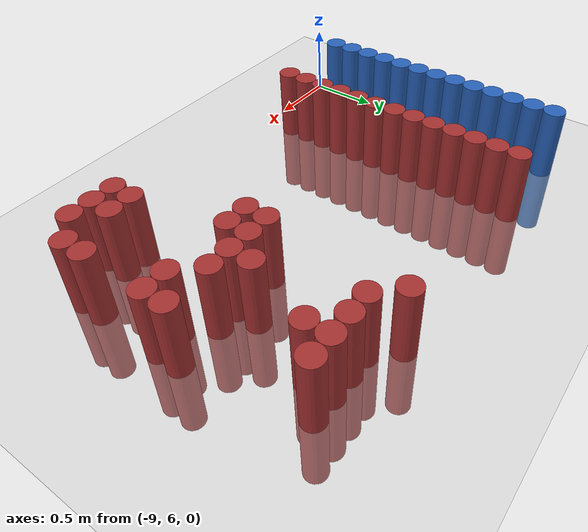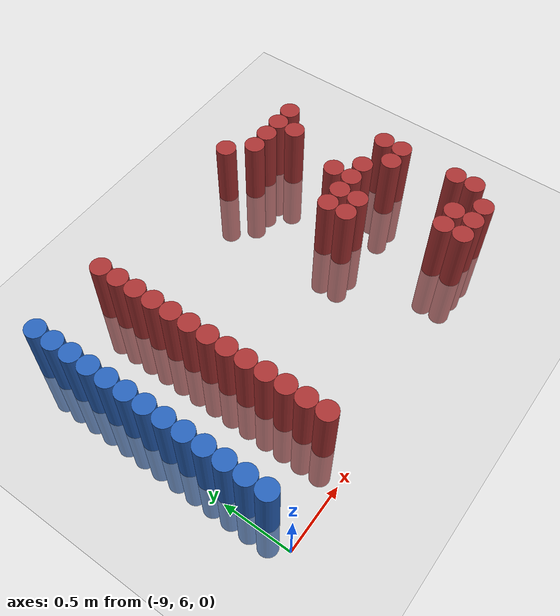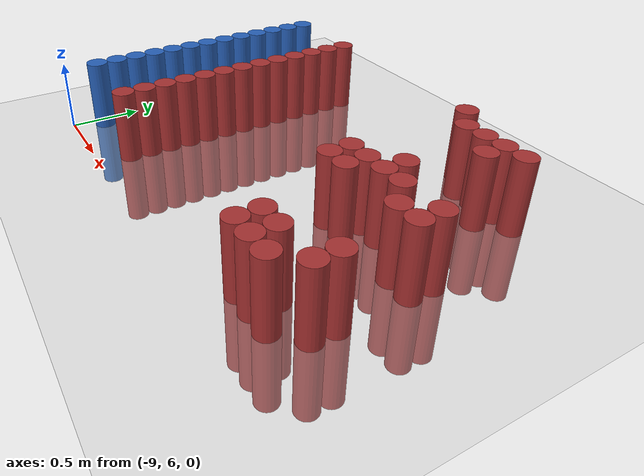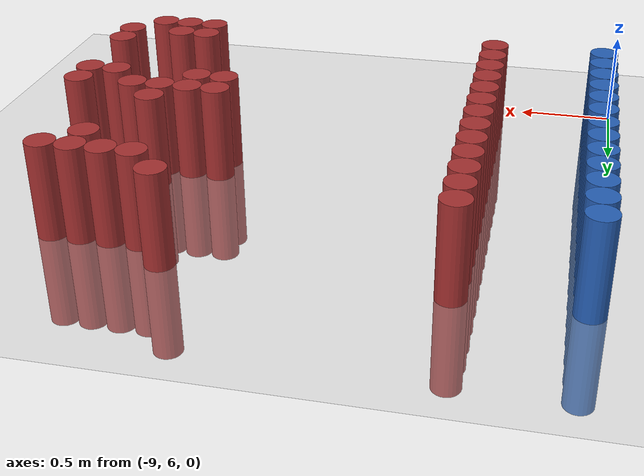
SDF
<sdf version="1.6">
 <world name="default">
  <model name="ground_plane">
   <static>1</static>
   <link name="link">
    <collision name="collision">
     <geometry><plane><normal>0 0 1</normal><size>100 100</size></plane></geometry>
     <surface><friction><ode><mu>100</mu><mu2>50</mu2></ode></friction></surface>
    </collision>
    <visual name="visual">
     <cast_shadows>0</cast_shadows>
     <geometry><plane><normal>0 0 1</normal><size>100 100</size></plane></geometry>
     <material>
      <script><uri>file://media/materials/scripts/gazebo.material</uri><name>Gazebo/Grey</name></script>
     </material>
    </visual>
   </link>
  </model>
  <model name="unit_cylinder_132">
   <static>1</static>
   <pose>-8.925000 6.225000 0.000000 0.000000 0.000000 0.000000</pose>
   <link name="link">
    <inertial>
     <mass>1</mass>
     <inertia><ixx>0.145833</ixx><ixy>0</ixy><ixz>0</ixz><iyy>0.145833</iyy><iyz>0</iyz><izz>0.125</izz></inertia>
    </inertial>
    <collision name="collision">
     <geometry><cylinder><radius>0.075000</radius><length>1</length></cylinder></geometry>
    </collision>
    <visual name="visual">
     <geometry><cylinder><radius>0.075000</radius><length>1</length></cylinder></geometry>
     <material>
      <ambient>0.152000 0.379000 0.720000 1</ambient>
      <diffuse>0.152000 0.379000 0.720000 1</diffuse>
     </material>
     <material>
      <script><name>Gazebo/Grey</name><uri>file://media/materials/scripts/gazebo.material</uri></script>
     </material>
    </visual>
   </link>
  </model>
  <model name="unit_cylinder_133">
   <static>1</static>
   <pose>-8.925000 6.375000 0.000000 0.000000 0.000000 0.000000</pose>
   <link name="link">
    <inertial>
     <mass>1</mass>
     <inertia><ixx>0.145833</ixx><ixy>0</ixy><ixz>0</ixz><iyy>0.145833</iyy><iyz>0</iyz><izz>0.125</izz></inertia>
    </inertial>
    <collision name="collision">
     <geometry><cylinder><radius>0.075000</radius><length>1</length></cylinder></geometry>
    </collision>
    <visual name="visual">
     <geometry><cylinder><radius>0.075000</radius><length>1</length></cylinder></geometry>
     <material>
      <ambient>0.152000 0.379000 0.720000 1</ambient>
      <diffuse>0.152000 0.379000 0.720000 1</diffuse>
     </material>
     <material>
      <script><name>Gazebo/Grey</name><uri>file://media/materials/scripts/gazebo.material</uri></script>
     </material>
    </visual>
   </link>
  </model>
  <model name="unit_cylinder_134">
   <static>1</static>
   <pose>-8.925000 6.525000 0.000000 0.000000 0.000000 0.000000</pose>
   <link name="link">
    <inertial>
     <mass>1</mass>
     <inertia><ixx>0.145833</ixx><ixy>0</ixy><ixz>0</ixz><iyy>0.145833</iyy><iyz>0</iyz><izz>0.125</izz></inertia>
    </inertial>
    <collision name="collision">
     <geometry><cylinder><radius>0.075000</radius><length>1</length></cylinder></geometry>
    </collision>
    <visual name="visual">
     <geometry><cylinder><radius>0.075000</radius><length>1</length></cylinder></geometry>
     <material>
      <ambient>0.152000 0.379000 0.720000 1</ambient>
      <diffuse>0.152000 0.379000 0.720000 1</diffuse>
     </material>
     <material>
      <script><name>Gazebo/Grey</name><uri>file://media/materials/scripts/gazebo.material</uri></script>
     </material>
    </visual>
   </link>
  </model>
  <model name="unit_cylinder_135">
   <static>1</static>
   <pose>-8.925000 6.675000 0.000000 0.000000 0.000000 0.000000</pose>
   <link name="link">
    <inertial>
     <mass>1</mass>
     <inertia><ixx>0.145833</ixx><ixy>0</ixy><ixz>0</ixz><iyy>0.145833</iyy><iyz>0</iyz><izz>0.125</izz></inertia>
    </inertial>
    <collision name="collision">
     <geometry><cylinder><radius>0.075000</radius><length>1</length></cylinder></geometry>
    </collision>
    <visual name="visual">
     <geometry><cylinder><radius>0.075000</radius><length>1</length></cylinder></geometry>
     <material>
      <ambient>0.152000 0.379000 0.720000 1</ambient>
      <diffuse>0.152000 0.379000 0.720000 1</diffuse>
     </material>
     <material>
      <script><name>Gazebo/Grey</name><uri>file://media/materials/scripts/gazebo.material</uri></script>
     </material>
    </visual>
   </link>
  </model>
  <model name="unit_cylinder_136">
   <static>1</static>
   <pose>-8.925000 6.825000 0.000000 0.000000 0.000000 0.000000</pose>
   <link name="link">
    <inertial>
     <mass>1</mass>
     <inertia><ixx>0.145833</ixx><ixy>0</ixy><ixz>0</ixz><iyy>0.145833</iyy><iyz>0</iyz><izz>0.125</izz></inertia>
    </inertial>
    <collision name="collision">
     <geometry><cylinder><radius>0.075000</radius><length>1</length></cylinder></geometry>
    </collision>
    <visual name="visual">
     <geometry><cylinder><radius>0.075000</radius><length>1</length></cylinder></geometry>
     <material>
      <ambient>0.152000 0.379000 0.720000 1</ambient>
      <diffuse>0.152000 0.379000 0.720000 1</diffuse>
     </material>
     <material>
      <script><name>Gazebo/Grey</name><uri>file://media/materials/scripts/gazebo.material</uri></script>
     </material>
    </visual>
   </link>
  </model>
  <model name="unit_cylinder_137">
   <static>1</static>
   <pose>-8.925000 6.975000 0.000000 0.000000 0.000000 0.000000</pose>
   <link name="link">
    <inertial>
     <mass>1</mass>
     <inertia><ixx>0.145833</ixx><ixy>0</ixy><ixz>0</ixz><iyy>0.145833</iyy><iyz>0</iyz><izz>0.125</izz></inertia>
    </inertial>
    <collision name="collision">
     <geometry><cylinder><radius>0.075000</radius><length>1</length></cylinder></geometry>
    </collision>
    <visual name="visual">
     <geometry><cylinder><radius>0.075000</radius><length>1</length></cylinder></geometry>
     <material>
      <ambient>0.152000 0.379000 0.720000 1</ambient>
      <diffuse>0.152000 0.379000 0.720000 1</diffuse>
     </material>
     <material>
      <script><name>Gazebo/Grey</name><uri>file://media/materials/scripts/gazebo.material</uri></script>
     </material>
    </visual>
   </link>
  </model>
  <model name="unit_cylinder_138">
   <static>1</static>
   <pose>-8.925000 7.125000 0.000000 0.000000 0.000000 0.000000</pose>
   <link name="link">
    <inertial>
     <mass>1</mass>
     <inertia><ixx>0.145833</ixx><ixy>0</ixy><ixz>0</ixz><iyy>0.145833</iyy><iyz>0</iyz><izz>0.125</izz></inertia>
    </inertial>
    <collision name="collision">
     <geometry><cylinder><radius>0.075000</radius><length>1</length></cylinder></geometry>
    </collision>
    <visual name="visual">
     <geometry><cylinder><radius>0.075000</radius><length>1</length></cylinder></geometry>
     <material>
      <ambient>0.152000 0.379000 0.720000 1</ambient>
      <diffuse>0.152000 0.379000 0.720000 1</diffuse>
     </material>
     <material>
      <script><name>Gazebo/Grey</name><uri>file://media/materials/scripts/gazebo.material</uri></script>
     </material>
    </visual>
   </link>
  </model>
  <model name="unit_cylinder_139">
   <static>1</static>
   <pose>-8.925000 7.275000 0.000000 0.000000 0.000000 0.000000</pose>
   <link name="link">
    <inertial>
     <mass>1</mass>
     <inertia><ixx>0.145833</ixx><ixy>0</ixy><ixz>0</ixz><iyy>0.145833</iyy><iyz>0</iyz><izz>0.125</izz></inertia>
    </inertial>
    <collision name="collision">
     <geometry><cylinder><radius>0.075000</radius><length>1</length></cylinder></geometry>
    </collision>
    <visual name="visual">
     <geometry><cylinder><radius>0.075000</radius><length>1</length></cylinder></geometry>
     <material>
      <ambient>0.152000 0.379000 0.720000 1</ambient>
      <diffuse>0.152000 0.379000 0.720000 1</diffuse>
     </material>
     <material>
      <script><name>Gazebo/Grey</name><uri>file://media/materials/scripts/gazebo.material</uri></script>
     </material>
    </visual>
   </link>
  </model>
  <model name="unit_cylinder_140">
   <static>1</static>
   <pose>-8.925000 7.425000 0.000000 0.000000 0.000000 0.000000</pose>
   <link name="link">
    <inertial>
     <mass>1</mass>
     <inertia><ixx>0.145833</ixx><ixy>0</ixy><ixz>0</ixz><iyy>0.145833</iyy><iyz>0</iyz><izz>0.125</izz></inertia>
    </inertial>
    <collision name="collision">
     <geometry><cylinder><radius>0.075000</radius><length>1</length></cylinder></geometry>
    </collision>
    <visual name="visual">
     <geometry><cylinder><radius>0.075000</radius><length>1</length></cylinder></geometry>
     <material>
      <ambient>0.152000 0.379000 0.720000 1</ambient>
      <diffuse>0.152000 0.379000 0.720000 1</diffuse>
     </material>
     <material>
      <script><name>Gazebo/Grey</name><uri>file://media/materials/scripts/gazebo.material</uri></script>
     </material>
    </visual>
   </link>
  </model>
  <model name="unit_cylinder_141">
   <static>1</static>
   <pose>-8.925000 7.575000 0.000000 0.000000 0.000000 0.000000</pose>
   <link name="link">
    <inertial>
     <mass>1</mass>
     <inertia><ixx>0.145833</ixx><ixy>0</ixy><ixz>0</ixz><iyy>0.145833</iyy><iyz>0</iyz><izz>0.125</izz></inertia>
    </inertial>
    <collision name="collision">
     <geometry><cylinder><radius>0.075000</radius><length>1</length></cylinder></geometry>
    </collision>
    <visual name="visual">
     <geometry><cylinder><radius>0.075000</radius><length>1</length></cylinder></geometry>
     <material>
      <ambient>0.152000 0.379000 0.720000 1</ambient>
      <diffuse>0.152000 0.379000 0.720000 1</diffuse>
     </material>
     <material>
      <script><name>Gazebo/Grey</name><uri>file://media/materials/scripts/gazebo.material</uri></script>
     </material>
    </visual>
   </link>
  </model>
  <model name="unit_cylinder_142">
   <static>1</static>
   <pose>-8.925000 7.725000 0.000000 0.000000 0.000000 0.000000</pose>
   <link name="link">
    <inertial>
     <mass>1</mass>
     <inertia><ixx>0.145833</ixx><ixy>0</ixy><ixz>0</ixz><iyy>0.145833</iyy><iyz>0</iyz><izz>0.125</izz></inertia>
    </inertial>
    <collision name="collision">
     <geometry><cylinder><radius>0.075000</radius><length>1</length></cylinder></geometry>
    </collision>
    <visual name="visual">
     <geometry><cylinder><radius>0.075000</radius><length>1</length></cylinder></geometry>
     <material>
      <ambient>0.152000 0.379000 0.720000 1</ambient>
      <diffuse>0.152000 0.379000 0.720000 1</diffuse>
     </material>
     <material>
      <script><name>Gazebo/Grey</name><uri>file://media/materials/scripts/gazebo.material</uri></script>
     </material>
    </visual>
   </link>
  </model>
  <model name="unit_cylinder_143">
   <static>1</static>
   <pose>-8.925000 7.875000 0.000000 0.000000 0.000000 0.000000</pose>
   <link name="link">
    <inertial>
     <mass>1</mass>
     <inertia><ixx>0.145833</ixx><ixy>0</ixy><ixz>0</ixz><iyy>0.145833</iyy><iyz>0</iyz><izz>0.125</izz></inertia>
    </inertial>
    <collision name="collision">
     <geometry><cylinder><radius>0.075000</radius><length>1</length></cylinder></geometry>
    </collision>
    <visual name="visual">
     <geometry><cylinder><radius>0.075000</radius><length>1</length></cylinder></geometry>
     <material>
      <ambient>0.152000 0.379000 0.720000 1</ambient>
      <diffuse>0.152000 0.379000 0.720000 1</diffuse>
     </material>
     <material>
      <script><name>Gazebo/Grey</name><uri>file://media/materials/scripts/gazebo.material</uri></script>
     </material>
    </visual>
   </link>
  </model>
  <model name="unit_cylinder_144">
   <static>1</static>
   <pose>-8.925000 8.025000 0.000000 0.000000 0.000000 0.000000</pose>
   <link name="link">
    <inertial>
     <mass>1</mass>
     <inertia><ixx>0.145833</ixx><ixy>0</ixy><ixz>0</ixz><iyy>0.145833</iyy><iyz>0</iyz><izz>0.125</izz></inertia>
    </inertial>
    <collision name="collision">
     <geometry><cylinder><radius>0.075000</radius><length>1</length></cylinder></geometry>
    </collision>
    <visual name="visual">
     <geometry><cylinder><radius>0.075000</radius><length>1</length></cylinder></geometry>
     <material>
      <ambient>0.152000 0.379000 0.720000 1</ambient>
      <diffuse>0.152000 0.379000 0.720000 1</diffuse>
     </material>
     <material>
      <script><name>Gazebo/Grey</name><uri>file://media/materials/scripts/gazebo.material</uri></script>
     </material>
    </visual>
   </link>
  </model>
  <model name="unit_cylinder_166">
   <static>1</static>
   <pose>-8.325000 6.225000 0.000000 0.000000 0.000000 0.000000</pose>
   <link name="link">
    <inertial>
     <mass>1</mass>
     <inertia><ixx>0.145833</ixx><ixy>0</ixy><ixz>0</ixz><iyy>0.145833</iyy><iyz>0</iyz><izz>0.125</izz></inertia>
    </inertial>
    <collision name="collision">
     <geometry><cylinder><radius>0.075000</radius><length>1</length></cylinder></geometry>
    </collision>
    <visual name="visual">
     <geometry><cylinder><radius>0.075000</radius><length>1</length></cylinder></geometry>
     <material>
      <ambient>0.648000 0.192000 0.192000 1</ambient>
      <diffuse>0.648000 0.192000 0.192000 1</diffuse>
     </material>
     <material>
      <script><name>Gazebo/Grey</name><uri>file://media/materials/scripts/gazebo.material</uri></script>
     </material>
    </visual>
   </link>
  </model>
  <model name="unit_cylinder_167">
   <static>1</static>
   <pose>-8.325000 6.375000 0.000000 0.000000 0.000000 0.000000</pose>
   <link name="link">
    <inertial>
     <mass>1</mass>
     <inertia><ixx>0.145833</ixx><ixy>0</ixy><ixz>0</ixz><iyy>0.145833</iyy><iyz>0</iyz><izz>0.125</izz></inertia>
    </inertial>
    <collision name="collision">
     <geometry><cylinder><radius>0.075000</radius><length>1</length></cylinder></geometry>
    </collision>
    <visual name="visual">
     <geometry><cylinder><radius>0.075000</radius><length>1</length></cylinder></geometry>
     <material>
      <ambient>0.648000 0.192000 0.192000 1</ambient>
      <diffuse>0.648000 0.192000 0.192000 1</diffuse>
     </material>
     <material>
      <script><name>Gazebo/Grey</name><uri>file://media/materials/scripts/gazebo.material</uri></script>
     </material>
    </visual>
   </link>
  </model>
  <model name="unit_cylinder_168">
   <static>1</static>
   <pose>-8.325000 6.525000 0.000000 0.000000 0.000000 0.000000</pose>
   <link name="link">
    <inertial>
     <mass>1</mass>
     <inertia><ixx>0.145833</ixx><ixy>0</ixy><ixz>0</ixz><iyy>0.145833</iyy><iyz>0</iyz><izz>0.125</izz></inertia>
    </inertial>
    <collision name="collision">
     <geometry><cylinder><radius>0.075000</radius><length>1</length></cylinder></geometry>
    </collision>
    <visual name="visual">
     <geometry><cylinder><radius>0.075000</radius><length>1</length></cylinder></geometry>
     <material>
      <ambient>0.648000 0.192000 0.192000 1</ambient>
      <diffuse>0.648000 0.192000 0.192000 1</diffuse>
     </material>
     <material>
      <script><name>Gazebo/Grey</name><uri>file://media/materials/scripts/gazebo.material</uri></script>
     </material>
    </visual>
   </link>
  </model>
  <model name="unit_cylinder_169">
   <static>1</static>
   <pose>-8.325000 6.675000 0.000000 0.000000 0.000000 0.000000</pose>
   <link name="link">
    <inertial>
     <mass>1</mass>
     <inertia><ixx>0.145833</ixx><ixy>0</ixy><ixz>0</ixz><iyy>0.145833</iyy><iyz>0</iyz><izz>0.125</izz></inertia>
    </inertial>
    <collision name="collision">
     <geometry><cylinder><radius>0.075000</radius><length>1</length></cylinder></geometry>
    </collision>
    <visual name="visual">
     <geometry><cylinder><radius>0.075000</radius><length>1</length></cylinder></geometry>
     <material>
      <ambient>0.648000 0.192000 0.192000 1</ambient>
      <diffuse>0.648000 0.192000 0.192000 1</diffuse>
     </material>
     <material>
      <script><name>Gazebo/Grey</name><uri>file://media/materials/scripts/gazebo.material</uri></script>
     </material>
    </visual>
   </link>
  </model>
  <model name="unit_cylinder_170">
   <static>1</static>
   <pose>-8.325000 6.825000 0.000000 0.000000 0.000000 0.000000</pose>
   <link name="link">
    <inertial>
     <mass>1</mass>
     <inertia><ixx>0.145833</ixx><ixy>0</ixy><ixz>0</ixz><iyy>0.145833</iyy><iyz>0</iyz><izz>0.125</izz></inertia>
    </inertial>
    <collision name="collision">
     <geometry><cylinder><radius>0.075000</radius><length>1</length></cylinder></geometry>
    </collision>
    <visual name="visual">
     <geometry><cylinder><radius>0.075000</radius><length>1</length></cylinder></geometry>
     <material>
      <ambient>0.648000 0.192000 0.192000 1</ambient>
      <diffuse>0.648000 0.192000 0.192000 1</diffuse>
     </material>
     <material>
      <script><name>Gazebo/Grey</name><uri>file://media/materials/scripts/gazebo.material</uri></script>
     </material>
    </visual>
   </link>
  </model>
  <model name="unit_cylinder_171">
   <static>1</static>
   <pose>-8.325000 6.975000 0.000000 0.000000 0.000000 0.000000</pose>
   <link name="link">
    <inertial>
     <mass>1</mass>
     <inertia><ixx>0.145833</ixx><ixy>0</ixy><ixz>0</ixz><iyy>0.145833</iyy><iyz>0</iyz><izz>0.125</izz></inertia>
    </inertial>
    <collision name="collision">
     <geometry><cylinder><radius>0.075000</radius><length>1</length></cylinder></geometry>
    </collision>
    <visual name="visual">
     <geometry><cylinder><radius>0.075000</radius><length>1</length></cylinder></geometry>
     <material>
      <ambient>0.648000 0.192000 0.192000 1</ambient>
      <diffuse>0.648000 0.192000 0.192000 1</diffuse>
     </material>
     <material>
      <script><name>Gazebo/Grey</name><uri>file://media/materials/scripts/gazebo.material</uri></script>
     </material>
    </visual>
   </link>
  </model>
  <model name="unit_cylinder_172">
   <static>1</static>
   <pose>-8.325000 7.125000 0.000000 0.000000 0.000000 0.000000</pose>
   <link name="link">
    <inertial>
     <mass>1</mass>
     <inertia><ixx>0.145833</ixx><ixy>0</ixy><ixz>0</ixz><iyy>0.145833</iyy><iyz>0</iyz><izz>0.125</izz></inertia>
    </inertial>
    <collision name="collision">
     <geometry><cylinder><radius>0.075000</radius><length>1</length></cylinder></geometry>
    </collision>
    <visual name="visual">
     <geometry><cylinder><radius>0.075000</radius><length>1</length></cylinder></geometry>
     <material>
      <ambient>0.648000 0.192000 0.192000 1</ambient>
      <diffuse>0.648000 0.192000 0.192000 1</diffuse>
     </material>
     <material>
      <script><name>Gazebo/Grey</name><uri>file://media/materials/scripts/gazebo.material</uri></script>
     </material>
    </visual>
   </link>
  </model>
  <model name="unit_cylinder_173">
   <static>1</static>
   <pose>-8.325000 7.275000 0.000000 0.000000 0.000000 0.000000</pose>
   <link name="link">
    <inertial>
     <mass>1</mass>
     <inertia><ixx>0.145833</ixx><ixy>0</ixy><ixz>0</ixz><iyy>0.145833</iyy><iyz>0</iyz><izz>0.125</izz></inertia>
    </inertial>
    <collision name="collision">
     <geometry><cylinder><radius>0.075000</radius><length>1</length></cylinder></geometry>
    </collision>
    <visual name="visual">
     <geometry><cylinder><radius>0.075000</radius><length>1</length></cylinder></geometry>
     <material>
      <ambient>0.648000 0.192000 0.192000 1</ambient>
      <diffuse>0.648000 0.192000 0.192000 1</diffuse>
     </material>
     <material>
      <script><name>Gazebo/Grey</name><uri>file://media/materials/scripts/gazebo.material</uri></script>
     </material>
    </visual>
   </link>
  </model>
  <model name="unit_cylinder_174">
   <static>1</static>
   <pose>-8.325000 7.425000 0.000000 0.000000 0.000000 0.000000</pose>
   <link name="link">
    <inertial>
     <mass>1</mass>
     <inertia><ixx>0.145833</ixx><ixy>0</ixy><ixz>0</ixz><iyy>0.145833</iyy><iyz>0</iyz><izz>0.125</izz></inertia>
    </inertial>
    <collision name="collision">
     <geometry><cylinder><radius>0.075000</radius><length>1</length></cylinder></geometry>
    </collision>
    <visual name="visual">
     <geometry><cylinder><radius>0.075000</radius><length>1</length></cylinder></geometry>
     <material>
      <ambient>0.648000 0.192000 0.192000 1</ambient>
      <diffuse>0.648000 0.192000 0.192000 1</diffuse>
     </material>
     <material>
      <script><name>Gazebo/Grey</name><uri>file://media/materials/scripts/gazebo.material</uri></script>
     </material>
    </visual>
   </link>
  </model>
  <model name="unit_cylinder_175">
   <static>1</static>
   <pose>-8.325000 7.575000 0.000000 0.000000 0.000000 0.000000</pose>
   <link name="link">
    <inertial>
     <mass>1</mass>
     <inertia><ixx>0.145833</ixx><ixy>0</ixy><ixz>0</ixz><iyy>0.145833</iyy><iyz>0</iyz><izz>0.125</izz></inertia>
    </inertial>
    <collision name="collision">
     <geometry><cylinder><radius>0.075000</radius><length>1</length></cylinder></geometry>
    </collision>
    <visual name="visual">
     <geometry><cylinder><radius>0.075000</radius><length>1</length></cylinder></geometry>
     <material>
      <ambient>0.648000 0.192000 0.192000 1</ambient>
      <diffuse>0.648000 0.192000 0.192000 1</diffuse>
     </material>
     <material>
      <script><name>Gazebo/Grey</name><uri>file://media/materials/scripts/gazebo.material</uri></script>
     </material>
    </visual>
   </link>
  </model>
  <model name="unit_cylinder_176">
   <static>1</static>
   <pose>-8.325000 7.725000 0.000000 0.000000 0.000000 0.000000</pose>
   <link name="link">
    <inertial>
     <mass>1</mass>
     <inertia><ixx>0.145833</ixx><ixy>0</ixy><ixz>0</ixz><iyy>0.145833</iyy><iyz>0</iyz><izz>0.125</izz></inertia>
    </inertial>
    <collision name="collision">
     <geometry><cylinder><radius>0.075000</radius><length>1</length></cylinder></geometry>
    </collision>
    <visual name="visual">
     <geometry><cylinder><radius>0.075000</radius><length>1</length></cylinder></geometry>
     <material>
      <ambient>0.648000 0.192000 0.192000 1</ambient>
      <diffuse>0.648000 0.192000 0.192000 1</diffuse>
     </material>
     <material>
      <script><name>Gazebo/Grey</name><uri>file://media/materials/scripts/gazebo.material</uri></script>
     </material>
    </visual>
   </link>
  </model>
  <model name="unit_cylinder_177">
   <static>1</static>
   <pose>-8.325000 7.875000 0.000000 0.000000 0.000000 0.000000</pose>
   <link name="link">
    <inertial>
     <mass>1</mass>
     <inertia><ixx>0.145833</ixx><ixy>0</ixy><ixz>0</ixz><iyy>0.145833</iyy><iyz>0</iyz><izz>0.125</izz></inertia>
    </inertial>
    <collision name="collision">
     <geometry><cylinder><radius>0.075000</radius><length>1</length></cylinder></geometry>
    </collision>
    <visual name="visual">
     <geometry><cylinder><radius>0.075000</radius><length>1</length></cylinder></geometry>
     <material>
      <ambient>0.648000 0.192000 0.192000 1</ambient>
      <diffuse>0.648000 0.192000 0.192000 1</diffuse>
     </material>
     <material>
      <script><name>Gazebo/Grey</name><uri>file://media/materials/scripts/gazebo.material</uri></script>
     </material>
    </visual>
   </link>
  </model>
  <model name="unit_cylinder_178">
   <static>1</static>
   <pose>-8.325000 8.025000 0.000000 0.000000 0.000000 0.000000</pose>
   <link name="link">
    <inertial>
     <mass>1</mass>
     <inertia><ixx>0.145833</ixx><ixy>0</ixy><ixz>0</ixz><iyy>0.145833</iyy><iyz>0</iyz><izz>0.125</izz></inertia>
    </inertial>
    <collision name="collision">
     <geometry><cylinder><radius>0.075000</radius><length>1</length></cylinder></geometry>
    </collision>
    <visual name="visual">
     <geometry><cylinder><radius>0.075000</radius><length>1</length></cylinder></geometry>
     <material>
      <ambient>0.648000 0.192000 0.192000 1</ambient>
      <diffuse>0.648000 0.192000 0.192000 1</diffuse>
     </material>
     <material>
      <script><name>Gazebo/Grey</name><uri>file://media/materials/scripts/gazebo.material</uri></script>
     </material>
    </visual>
   </link>
  </model>
  <model name="unit_cylinder_195">
   <static>1</static>
   <pose>-6.975000 6.975000 0.000000 0.000000 0.000000 0.000000</pose>
   <link name="link">
    <inertial>
     <mass>1</mass>
     <inertia><ixx>0.145833</ixx><ixy>0</ixy><ixz>0</ixz><iyy>0.145833</iyy><iyz>0</iyz><izz>0.125</izz></inertia>
    </inertial>
    <collision name="collision">
     <geometry><cylinder><radius>0.075000</radius><length>1</length></cylinder></geometry>
    </collision>
    <visual name="visual">
     <geometry><cylinder><radius>0.075000</radius><length>1</length></cylinder></geometry>
     <material>
      <ambient>0.648000 0.192000 0.192000 1</ambient>
      <diffuse>0.648000 0.192000 0.192000 1</diffuse>
     </material>
     <material>
      <script><name>Gazebo/Grey</name><uri>file://media/materials/scripts/gazebo.material</uri></script>
     </material>
    </visual>
   </link>
  </model>
  <model name="unit_cylinder_196">
   <static>1</static>
   <pose>-6.975000 7.125000 0.000000 0.000000 0.000000 0.000000</pose>
   <link name="link">
    <inertial>
     <mass>1</mass>
     <inertia><ixx>0.145833</ixx><ixy>0</ixy><ixz>0</ixz><iyy>0.145833</iyy><iyz>0</iyz><izz>0.125</izz></inertia>
    </inertial>
    <collision name="collision">
     <geometry><cylinder><radius>0.075000</radius><length>1</length></cylinder></geometry>
    </collision>
    <visual name="visual">
     <geometry><cylinder><radius>0.075000</radius><length>1</length></cylinder></geometry>
     <material>
      <ambient>0.648000 0.192000 0.192000 1</ambient>
      <diffuse>0.648000 0.192000 0.192000 1</diffuse>
     </material>
     <material>
      <script><name>Gazebo/Grey</name><uri>file://media/materials/scripts/gazebo.material</uri></script>
     </material>
    </visual>
   </link>
  </model>
  <model name="unit_cylinder_197">
   <static>1</static>
   <pose>-6.975000 8.025000 0.000000 0.000000 0.000000 0.000000</pose>
   <link name="link">
    <inertial>
     <mass>1</mass>
     <inertia><ixx>0.145833</ixx><ixy>0</ixy><ixz>0</ixz><iyy>0.145833</iyy><iyz>0</iyz><izz>0.125</izz></inertia>
    </inertial>
    <collision name="collision">
     <geometry><cylinder><radius>0.075000</radius><length>1</length></cylinder></geometry>
    </collision>
    <visual name="visual">
     <geometry><cylinder><radius>0.075000</radius><length>1</length></cylinder></geometry>
     <material>
      <ambient>0.648000 0.192000 0.192000 1</ambient>
      <diffuse>0.648000 0.192000 0.192000 1</diffuse>
     </material>
     <material>
      <script><name>Gazebo/Grey</name><uri>file://media/materials/scripts/gazebo.material</uri></script>
     </material>
    </visual>
   </link>
  </model>
  <model name="unit_cylinder_202">
   <static>1</static>
   <pose>-6.825000 6.975000 0.000000 0.000000 0.000000 0.000000</pose>
   <link name="link">
    <inertial>
     <mass>1</mass>
     <inertia><ixx>0.145833</ixx><ixy>0</ixy><ixz>0</ixz><iyy>0.145833</iyy><iyz>0</iyz><izz>0.125</izz></inertia>
    </inertial>
    <collision name="collision">
     <geometry><cylinder><radius>0.075000</radius><length>1</length></cylinder></geometry>
    </collision>
    <visual name="visual">
     <geometry><cylinder><radius>0.075000</radius><length>1</length></cylinder></geometry>
     <material>
      <ambient>0.648000 0.192000 0.192000 1</ambient>
      <diffuse>0.648000 0.192000 0.192000 1</diffuse>
     </material>
     <material>
      <script><name>Gazebo/Grey</name><uri>file://media/materials/scripts/gazebo.material</uri></script>
     </material>
    </visual>
   </link>
  </model>
  <model name="unit_cylinder_203">
   <static>1</static>
   <pose>-6.825000 7.125000 0.000000 0.000000 0.000000 0.000000</pose>
   <link name="link">
    <inertial>
     <mass>1</mass>
     <inertia><ixx>0.145833</ixx><ixy>0</ixy><ixz>0</ixz><iyy>0.145833</iyy><iyz>0</iyz><izz>0.125</izz></inertia>
    </inertial>
    <collision name="collision">
     <geometry><cylinder><radius>0.075000</radius><length>1</length></cylinder></geometry>
    </collision>
    <visual name="visual">
     <geometry><cylinder><radius>0.075000</radius><length>1</length></cylinder></geometry>
     <material>
      <ambient>0.648000 0.192000 0.192000 1</ambient>
      <diffuse>0.648000 0.192000 0.192000 1</diffuse>
     </material>
     <material>
      <script><name>Gazebo/Grey</name><uri>file://media/materials/scripts/gazebo.material</uri></script>
     </material>
    </visual>
   </link>
  </model>
  <model name="unit_cylinder_204">
   <static>1</static>
   <pose>-6.825000 7.875000 0.000000 0.000000 0.000000 0.000000</pose>
   <link name="link">
    <inertial>
     <mass>1</mass>
     <inertia><ixx>0.145833</ixx><ixy>0</ixy><ixz>0</ixz><iyy>0.145833</iyy><iyz>0</iyz><izz>0.125</izz></inertia>
    </inertial>
    <collision name="collision">
     <geometry><cylinder><radius>0.075000</radius><length>1</length></cylinder></geometry>
    </collision>
    <visual name="visual">
     <geometry><cylinder><radius>0.075000</radius><length>1</length></cylinder></geometry>
     <material>
      <ambient>0.648000 0.192000 0.192000 1</ambient>
      <diffuse>0.648000 0.192000 0.192000 1</diffuse>
     </material>
     <material>
      <script><name>Gazebo/Grey</name><uri>file://media/materials/scripts/gazebo.material</uri></script>
     </material>
    </visual>
   </link>
  </model>
  <model name="unit_cylinder_209">
   <static>1</static>
   <pose>-6.675000 6.225000 0.000000 0.000000 0.000000 0.000000</pose>
   <link name="link">
    <inertial>
     <mass>1</mass>
     <inertia><ixx>0.145833</ixx><ixy>0</ixy><ixz>0</ixz><iyy>0.145833</iyy><iyz>0</iyz><izz>0.125</izz></inertia>
    </inertial>
    <collision name="collision">
     <geometry><cylinder><radius>0.075000</radius><length>1</length></cylinder></geometry>
    </collision>
    <visual name="visual">
     <geometry><cylinder><radius>0.075000</radius><length>1</length></cylinder></geometry>
     <material>
      <ambient>0.648000 0.192000 0.192000 1</ambient>
      <diffuse>0.648000 0.192000 0.192000 1</diffuse>
     </material>
     <material>
      <script><name>Gazebo/Grey</name><uri>file://media/materials/scripts/gazebo.material</uri></script>
     </material>
    </visual>
   </link>
  </model>
  <model name="unit_cylinder_210">
   <static>1</static>
   <pose>-6.675000 6.375000 0.000000 0.000000 0.000000 0.000000</pose>
   <link name="link">
    <inertial>
     <mass>1</mass>
     <inertia><ixx>0.145833</ixx><ixy>0</ixy><ixz>0</ixz><iyy>0.145833</iyy><iyz>0</iyz><izz>0.125</izz></inertia>
    </inertial>
    <collision name="collision">
     <geometry><cylinder><radius>0.075000</radius><length>1</length></cylinder></geometry>
    </collision>
    <visual name="visual">
     <geometry><cylinder><radius>0.075000</radius><length>1</length></cylinder></geometry>
     <material>
      <ambient>0.648000 0.192000 0.192000 1</ambient>
      <diffuse>0.648000 0.192000 0.192000 1</diffuse>
     </material>
     <material>
      <script><name>Gazebo/Grey</name><uri>file://media/materials/scripts/gazebo.material</uri></script>
     </material>
    </visual>
   </link>
  </model>
  <model name="unit_cylinder_211">
   <static>1</static>
   <pose>-6.675000 7.125000 0.000000 0.000000 0.000000 0.000000</pose>
   <link name="link">
    <inertial>
     <mass>1</mass>
     <inertia><ixx>0.145833</ixx><ixy>0</ixy><ixz>0</ixz><iyy>0.145833</iyy><iyz>0</iyz><izz>0.125</izz></inertia>
    </inertial>
    <collision name="collision">
     <geometry><cylinder><radius>0.075000</radius><length>1</length></cylinder></geometry>
    </collision>
    <visual name="visual">
     <geometry><cylinder><radius>0.075000</radius><length>1</length></cylinder></geometry>
     <material>
      <ambient>0.648000 0.192000 0.192000 1</ambient>
      <diffuse>0.648000 0.192000 0.192000 1</diffuse>
     </material>
     <material>
      <script><name>Gazebo/Grey</name><uri>file://media/materials/scripts/gazebo.material</uri></script>
     </material>
    </visual>
   </link>
  </model>
  <model name="unit_cylinder_212">
   <static>1</static>
   <pose>-6.675000 7.275000 0.000000 0.000000 0.000000 0.000000</pose>
   <link name="link">
    <inertial>
     <mass>1</mass>
     <inertia><ixx>0.145833</ixx><ixy>0</ixy><ixz>0</ixz><iyy>0.145833</iyy><iyz>0</iyz><izz>0.125</izz></inertia>
    </inertial>
    <collision name="collision">
     <geometry><cylinder><radius>0.075000</radius><length>1</length></cylinder></geometry>
    </collision>
    <visual name="visual">
     <geometry><cylinder><radius>0.075000</radius><length>1</length></cylinder></geometry>
     <material>
      <ambient>0.648000 0.192000 0.192000 1</ambient>
      <diffuse>0.648000 0.192000 0.192000 1</diffuse>
     </material>
     <material>
      <script><name>Gazebo/Grey</name><uri>file://media/materials/scripts/gazebo.material</uri></script>
     </material>
    </visual>
   </link>
  </model>
  <model name="unit_cylinder_213">
   <static>1</static>
   <pose>-6.675000 7.875000 0.000000 0.000000 0.000000 0.000000</pose>
   <link name="link">
    <inertial>
     <mass>1</mass>
     <inertia><ixx>0.145833</ixx><ixy>0</ixy><ixz>0</ixz><iyy>0.145833</iyy><iyz>0</iyz><izz>0.125</izz></inertia>
    </inertial>
    <collision name="collision">
     <geometry><cylinder><radius>0.075000</radius><length>1</length></cylinder></geometry>
    </collision>
    <visual name="visual">
     <geometry><cylinder><radius>0.075000</radius><length>1</length></cylinder></geometry>
     <material>
      <ambient>0.648000 0.192000 0.192000 1</ambient>
      <diffuse>0.648000 0.192000 0.192000 1</diffuse>
     </material>
     <material>
      <script><name>Gazebo/Grey</name><uri>file://media/materials/scripts/gazebo.material</uri></script>
     </material>
    </visual>
   </link>
  </model>
  <model name="unit_cylinder_219">
   <static>1</static>
   <pose>-6.525000 6.225000 0.000000 0.000000 0.000000 0.000000</pose>
   <link name="link">
    <inertial>
     <mass>1</mass>
     <inertia><ixx>0.145833</ixx><ixy>0</ixy><ixz>0</ixz><iyy>0.145833</iyy><iyz>0</iyz><izz>0.125</izz></inertia>
    </inertial>
    <collision name="collision">
     <geometry><cylinder><radius>0.075000</radius><length>1</length></cylinder></geometry>
    </collision>
    <visual name="visual">
     <geometry><cylinder><radius>0.075000</radius><length>1</length></cylinder></geometry>
     <material>
      <ambient>0.648000 0.192000 0.192000 1</ambient>
      <diffuse>0.648000 0.192000 0.192000 1</diffuse>
     </material>
     <material>
      <script><name>Gazebo/Grey</name><uri>file://media/materials/scripts/gazebo.material</uri></script>
     </material>
    </visual>
   </link>
  </model>
  <model name="unit_cylinder_220">
   <static>1</static>
   <pose>-6.525000 6.375000 0.000000 0.000000 0.000000 0.000000</pose>
   <link name="link">
    <inertial>
     <mass>1</mass>
     <inertia><ixx>0.145833</ixx><ixy>0</ixy><ixz>0</ixz><iyy>0.145833</iyy><iyz>0</iyz><izz>0.125</izz></inertia>
    </inertial>
    <collision name="collision">
     <geometry><cylinder><radius>0.075000</radius><length>1</length></cylinder></geometry>
    </collision>
    <visual name="visual">
     <geometry><cylinder><radius>0.075000</radius><length>1</length></cylinder></geometry>
     <material>
      <ambient>0.648000 0.192000 0.192000 1</ambient>
      <diffuse>0.648000 0.192000 0.192000 1</diffuse>
     </material>
     <material>
      <script><name>Gazebo/Grey</name><uri>file://media/materials/scripts/gazebo.material</uri></script>
     </material>
    </visual>
   </link>
  </model>
  <model name="unit_cylinder_221">
   <static>1</static>
   <pose>-6.525000 7.125000 0.000000 0.000000 0.000000 0.000000</pose>
   <link name="link">
    <inertial>
     <mass>1</mass>
     <inertia><ixx>0.145833</ixx><ixy>0</ixy><ixz>0</ixz><iyy>0.145833</iyy><iyz>0</iyz><izz>0.125</izz></inertia>
    </inertial>
    <collision name="collision">
     <geometry><cylinder><radius>0.075000</radius><length>1</length></cylinder></geometry>
    </collision>
    <visual name="visual">
     <geometry><cylinder><radius>0.075000</radius><length>1</length></cylinder></geometry>
     <material>
      <ambient>0.648000 0.192000 0.192000 1</ambient>
      <diffuse>0.648000 0.192000 0.192000 1</diffuse>
     </material>
     <material>
      <script><name>Gazebo/Grey</name><uri>file://media/materials/scripts/gazebo.material</uri></script>
     </material>
    </visual>
   </link>
  </model>
  <model name="unit_cylinder_222">
   <static>1</static>
   <pose>-6.525000 7.725000 0.000000 0.000000 0.000000 0.000000</pose>
   <link name="link">
    <inertial>
     <mass>1</mass>
     <inertia><ixx>0.145833</ixx><ixy>0</ixy><ixz>0</ixz><iyy>0.145833</iyy><iyz>0</iyz><izz>0.125</izz></inertia>
    </inertial>
    <collision name="collision">
     <geometry><cylinder><radius>0.075000</radius><length>1</length></cylinder></geometry>
    </collision>
    <visual name="visual">
     <geometry><cylinder><radius>0.075000</radius><length>1</length></cylinder></geometry>
     <material>
      <ambient>0.648000 0.192000 0.192000 1</ambient>
      <diffuse>0.648000 0.192000 0.192000 1</diffuse>
     </material>
     <material>
      <script><name>Gazebo/Grey</name><uri>file://media/materials/scripts/gazebo.material</uri></script>
     </material>
    </visual>
   </link>
  </model>
  <model name="unit_cylinder_223">
   <static>1</static>
   <pose>-6.525000 7.875000 0.000000 0.000000 0.000000 0.000000</pose>
   <link name="link">
    <inertial>
     <mass>1</mass>
     <inertia><ixx>0.145833</ixx><ixy>0</ixy><ixz>0</ixz><iyy>0.145833</iyy><iyz>0</iyz><izz>0.125</izz></inertia>
    </inertial>
    <collision name="collision">
     <geometry><cylinder><radius>0.075000</radius><length>1</length></cylinder></geometry>
    </collision>
    <visual name="visual">
     <geometry><cylinder><radius>0.075000</radius><length>1</length></cylinder></geometry>
     <material>
      <ambient>0.648000 0.192000 0.192000 1</ambient>
      <diffuse>0.648000 0.192000 0.192000 1</diffuse>
     </material>
     <material>
      <script><name>Gazebo/Grey</name><uri>file://media/materials/scripts/gazebo.material</uri></script>
     </material>
    </visual>
   </link>
  </model>
  <model name="unit_cylinder_231">
   <static>1</static>
   <pose>-6.375000 6.225000 0.000000 0.000000 0.000000 0.000000</pose>
   <link name="link">
    <inertial>
     <mass>1</mass>
     <inertia><ixx>0.145833</ixx><ixy>0</ixy><ixz>0</ixz><iyy>0.145833</iyy><iyz>0</iyz><izz>0.125</izz></inertia>
    </inertial>
    <collision name="collision">
     <geometry><cylinder><radius>0.075000</radius><length>1</length></cylinder></geometry>
    </collision>
    <visual name="visual">
     <geometry><cylinder><radius>0.075000</radius><length>1</length></cylinder></geometry>
     <material>
      <ambient>0.648000 0.192000 0.192000 1</ambient>
      <diffuse>0.648000 0.192000 0.192000 1</diffuse>
     </material>
     <material>
      <script><name>Gazebo/Grey</name><uri>file://media/materials/scripts/gazebo.material</uri></script>
     </material>
    </visual>
   </link>
  </model>
  <model name="unit_cylinder_232">
   <static>1</static>
   <pose>-6.375000 6.975000 0.000000 0.000000 0.000000 0.000000</pose>
   <link name="link">
    <inertial>
     <mass>1</mass>
     <inertia><ixx>0.145833</ixx><ixy>0</ixy><ixz>0</ixz><iyy>0.145833</iyy><iyz>0</iyz><izz>0.125</izz></inertia>
    </inertial>
    <collision name="collision">
     <geometry><cylinder><radius>0.075000</radius><length>1</length></cylinder></geometry>
    </collision>
    <visual name="visual">
     <geometry><cylinder><radius>0.075000</radius><length>1</length></cylinder></geometry>
     <material>
      <ambient>0.648000 0.192000 0.192000 1</ambient>
      <diffuse>0.648000 0.192000 0.192000 1</diffuse>
     </material>
     <material>
      <script><name>Gazebo/Grey</name><uri>file://media/materials/scripts/gazebo.material</uri></script>
     </material>
    </visual>
   </link>
  </model>
  <model name="unit_cylinder_233">
   <static>1</static>
   <pose>-6.375000 7.875000 0.000000 0.000000 0.000000 0.000000</pose>
   <link name="link">
    <inertial>
     <mass>1</mass>
     <inertia><ixx>0.145833</ixx><ixy>0</ixy><ixz>0</ixz><iyy>0.145833</iyy><iyz>0</iyz><izz>0.125</izz></inertia>
    </inertial>
    <collision name="collision">
     <geometry><cylinder><radius>0.075000</radius><length>1</length></cylinder></geometry>
    </collision>
    <visual name="visual">
     <geometry><cylinder><radius>0.075000</radius><length>1</length></cylinder></geometry>
     <material>
      <ambient>0.648000 0.192000 0.192000 1</ambient>
      <diffuse>0.648000 0.192000 0.192000 1</diffuse>
     </material>
     <material>
      <script><name>Gazebo/Grey</name><uri>file://media/materials/scripts/gazebo.material</uri></script>
     </material>
    </visual>
   </link>
  </model>
  <model name="unit_cylinder_248">
   <static>1</static>
   <pose>-6.225000 6.375000 0.000000 0.000000 0.000000 0.000000</pose>
   <link name="link">
    <inertial>
     <mass>1</mass>
     <inertia><ixx>0.145833</ixx><ixy>0</ixy><ixz>0</ixz><iyy>0.145833</iyy><iyz>0</iyz><izz>0.125</izz></inertia>
    </inertial>
    <collision name="collision">
     <geometry><cylinder><radius>0.075000</radius><length>1</length></cylinder></geometry>
    </collision>
    <visual name="visual">
     <geometry><cylinder><radius>0.075000</radius><length>1</length></cylinder></geometry>
     <material>
      <ambient>0.648000 0.192000 0.192000 1</ambient>
      <diffuse>0.648000 0.192000 0.192000 1</diffuse>
     </material>
     <material>
      <script><name>Gazebo/Grey</name><uri>file://media/materials/scripts/gazebo.material</uri></script>
     </material>
    </visual>
   </link>
  </model>
  <model name="unit_cylinder_249">
   <static>1</static>
   <pose>-6.225000 6.525000 0.000000 0.000000 0.000000 0.000000</pose>
   <link name="link">
    <inertial>
     <mass>1</mass>
     <inertia><ixx>0.145833</ixx><ixy>0</ixy><ixz>0</ixz><iyy>0.145833</iyy><iyz>0</iyz><izz>0.125</izz></inertia>
    </inertial>
    <collision name="collision">
     <geometry><cylinder><radius>0.075000</radius><length>1</length></cylinder></geometry>
    </collision>
    <visual name="visual">
     <geometry><cylinder><radius>0.075000</radius><length>1</length></cylinder></geometry>
     <material>
      <ambient>0.648000 0.192000 0.192000 1</ambient>
      <diffuse>0.648000 0.192000 0.192000 1</diffuse>
     </material>
     <material>
      <script><name>Gazebo/Grey</name><uri>file://media/materials/scripts/gazebo.material</uri></script>
     </material>
    </visual>
   </link>
  </model>
  <model name="unit_cylinder_250">
   <static>1</static>
   <pose>-6.225000 6.975000 0.000000 0.000000 0.000000 0.000000</pose>
   <link name="link">
    <inertial>
     <mass>1</mass>
     <inertia><ixx>0.145833</ixx><ixy>0</ixy><ixz>0</ixz><iyy>0.145833</iyy><iyz>0</iyz><izz>0.125</izz></inertia>
    </inertial>
    <collision name="collision">
     <geometry><cylinder><radius>0.075000</radius><length>1</length></cylinder></geometry>
    </collision>
    <visual name="visual">
     <geometry><cylinder><radius>0.075000</radius><length>1</length></cylinder></geometry>
     <material>
      <ambient>0.648000 0.192000 0.192000 1</ambient>
      <diffuse>0.648000 0.192000 0.192000 1</diffuse>
     </material>
     <material>
      <script><name>Gazebo/Grey</name><uri>file://media/materials/scripts/gazebo.material</uri></script>
     </material>
    </visual>
   </link>
  </model>
  <model name="unit_cylinder_251">
   <static>1</static>
   <pose>-6.225000 7.125000 0.000000 0.000000 0.000000 0.000000</pose>
   <link name="link">
    <inertial>
     <mass>1</mass>
     <inertia><ixx>0.145833</ixx><ixy>0</ixy><ixz>0</ixz><iyy>0.145833</iyy><iyz>0</iyz><izz>0.125</izz></inertia>
    </inertial>
    <collision name="collision">
     <geometry><cylinder><radius>0.075000</radius><length>1</length></cylinder></geometry>
    </collision>
    <visual name="visual">
     <geometry><cylinder><radius>0.075000</radius><length>1</length></cylinder></geometry>
     <material>
      <ambient>0.648000 0.192000 0.192000 1</ambient>
      <diffuse>0.648000 0.192000 0.192000 1</diffuse>
     </material>
     <material>
      <script><name>Gazebo/Grey</name><uri>file://media/materials/scripts/gazebo.material</uri></script>
     </material>
    </visual>
   </link>
  </model>
 </world>
</sdf>
